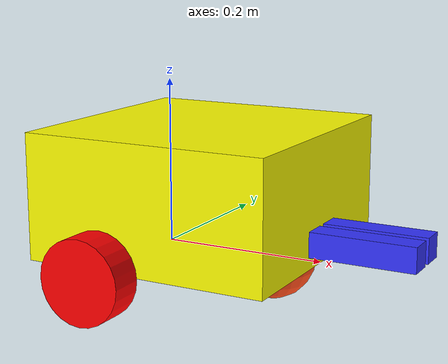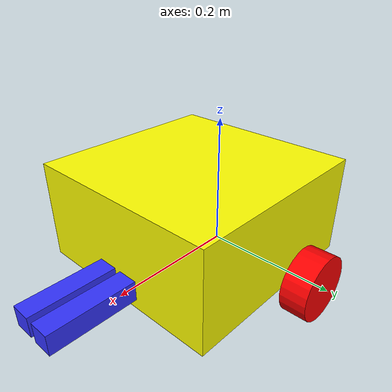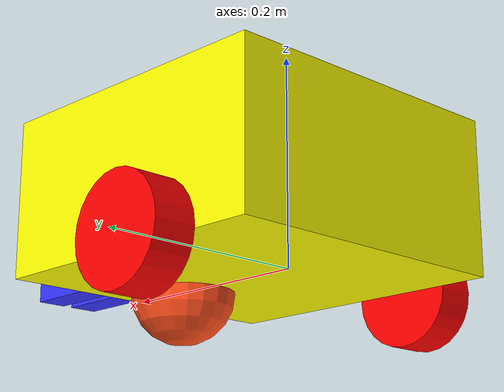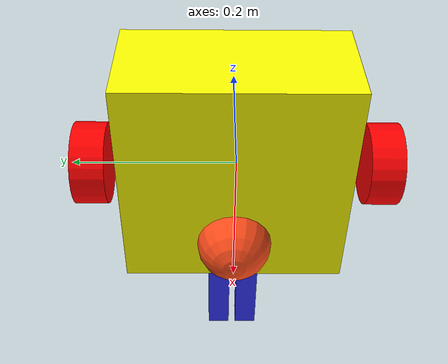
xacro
<?xml version="1.0"?>
<robot xmlns:xacro="http://www.ros.org/wiki/xacro" >

    <xacro:include filename="inertial_macros.xacro" />

    <material name="white">
        <color rgba="1 1 1 1" />
    </material>

    <material name="orange">
        <color rgba="1 0.3 0.1 1"/>
    </material>

    <material name="blue">
        <color rgba="0.2 0.2 1 1"/>
    </material>

    <material name="black">
        <color rgba="0 0 0 1"/>
    </material>

    <material name="red">
        <color rgba="1 0 0 1"/>
    </material>

    <material name="pink">
            <color rgba="1 0.5 0.5 1"/>
    </material>

    <material name="lightblue">
            <color rgba="0.7 0.7 1 1"/>
    </material>

    <material name="yellow">
            <color rgba="1 1 0 1"/>
    </material>

    <!-- BASE LINK -->

    <link name="base_link">

    </link>

    <joint name="chassis_joint" type="fixed">
        <parent link="base_link"/>
        <child link="chassis"/>
        <origin xyz="-0.1 0 0"/>
    </joint>

    <link name="chassis">
        <visual>
            <origin xyz="0.15 0 0.075" rpy="0 0 0"/>
            <geometry>
                <box size="0.3 0.3 0.15"/>
            </geometry>
            <material name="yellow"/>
        </visual>
        <collision>
            <origin xyz="0.15 0 0.075" rpy="0 0 0"/>
            <geometry>
                <box size="0.3 0.3 0.15"/>
            </geometry>
        </collision>
        <!-- ... visual and collision here ... -->
        <xacro:inertial_box mass="0.5" x="0.3" y="0.3" z="0.15">
            <origin xyz="0.15 0 0.075" rpy="0 0 0"/>
        </xacro:inertial_box>
    </link>

    <gazebo reference="chassis">
        <material>Gazebo/White</material>
     </gazebo>

    <joint name="slider_joint1" type="prismatic">
        <origin xyz="0.25 0.02 0" rpy="0 0 0"/>
        <parent link="base_link"/>
        <child link="slider_link1"/>
        <axis xyz="0 1 0"/>
        <limit lower="0" upper="0.1" velocity="100" effort="100"/>
    </joint>

    <link name="slider_link1">
        <visual>
            <origin xyz="0 0 0.03" rpy="0 0 0"/>
            <geometry>
                <box size="0.15 0.03 0.03" />
            </geometry>
            <material name="blue" />
        </visual>
        <collision>
            <origin xyz="0 0 0.03" rpy="0 0 0"/>
            <geometry>
                <box size="0.15 0.03 0.03" />
            </geometry>
        </collision>
        <xacro:inertial_box mass="0.05" x="0.05" y="0.025" z="0.015">
            <origin xyz="0 0 0.075" rpy="0 0 0"/>
        </xacro:inertial_box>
    </link>

    <joint name="slider_joint2" type="prismatic">
        <origin xyz="0.25 -0.02 0" rpy="0 0 0"/>
        <parent link="base_link"/>
        <child link="slider_link2"/>
        <axis xyz="0 -1 0"/>
        <limit lower="0" upper="0.1" velocity="100" effort="100"/>
    </joint>

    <link name="slider_link2">
        <visual>
            <origin xyz="0 0 0.03" rpy="0 0 0"/>
            <geometry>
                <box size="0.15 0.03 0.03" />
            </geometry>
            <material name="blue" />
        </visual>
        <collision>
            <origin xyz="0 0 0.03" rpy="0 0 0"/>
            <geometry>
                <box size="0.15 0.03 0.03" />
            </geometry>
        </collision>
        <xacro:inertial_box mass="0.05" x="0.05" y="0.025" z="0.015">
            <origin xyz="0 0 0.075" rpy="0 0 0"/>
        </xacro:inertial_box>
    </link>

    <!-- LEFT WHEEL -->

    <joint name="left_wheel_joint" type="continuous">
        <parent link="base_link"/>
        <child link="left_wheel"/>
        <origin xyz="0 0.175 0" rpy="-${pi/2} 0 0"/>
        <axis xyz="0 0 1"/>
    </joint>

    <link name="left_wheel">
        <visual>
            <geometry>
                <cylinder length="0.04" radius="0.05" />
            </geometry>
            <material name="red"/>
        </visual>
        <collision>
            <geometry>
                <cylinder length="0.04" radius="0.05" />
            </geometry>
        </collision>
        <!-- ... visual and collision here ... -->
        <xacro:inertial_cylinder mass="0.1" length="0.05" radius="0.05">
            <origin xyz="0 0 0" rpy="0 0 0"/>
        </xacro:inertial_cylinder>
    </link>

    <!-- RIGHT WHEEL -->

    <joint name="right_wheel_joint" type="continuous">
        <parent link="base_link"/>
        <child link="right_wheel"/>
        <origin xyz="0 -0.175 0" rpy="${pi/2} 0 0"/>
        <axis xyz="0 0 -1"/>
    </joint>

    <link name="right_wheel">
        <visual>
            <geometry>
                <cylinder length="0.04" radius="0.05" />
            </geometry>
            <material name="red"/>
        </visual>
        <collision>
            <geometry>
                <cylinder length="0.04" radius="0.05" />
            </geometry>
        </collision>
        <!-- ... visual and collision here ... -->
        <xacro:inertial_cylinder mass="0.1" length="0.05" radius="0.05">
            <origin xyz="0 0 0" rpy="0 0 0"/>
        </xacro:inertial_cylinder>
    </link>

    <!-- CASTER WHEEL -->

    <joint name="caster_wheel_joint" type="fixed">
        <parent link="chassis"/>
        <child link="caster_wheel"/>
        <origin xyz="0.24 0 0" rpy="0 0 0"/>
    </joint>

    <link name="caster_wheel">
        <visual>
            <geometry>
                <sphere radius="0.05" />
            </geometry>
            <material name="orange"/>
        </visual>
        <collision>
            <geometry>
                <sphere radius="0.05" />
            </geometry>
        </collision>
        <!-- ... visual and collision here ... -->
        <xacro:inertial_sphere mass="0.1" radius="0.05">
            <origin xyz="0 0 0" rpy="0 0 0"/>
        </xacro:inertial_sphere>
    </link>

    <gazebo reference="caster_wheel">
        <material>Gazebo/Black</material>
        <mu1 value="0.001"/>
        <mu2 value="0.001"/>
    </gazebo>

</robot>
